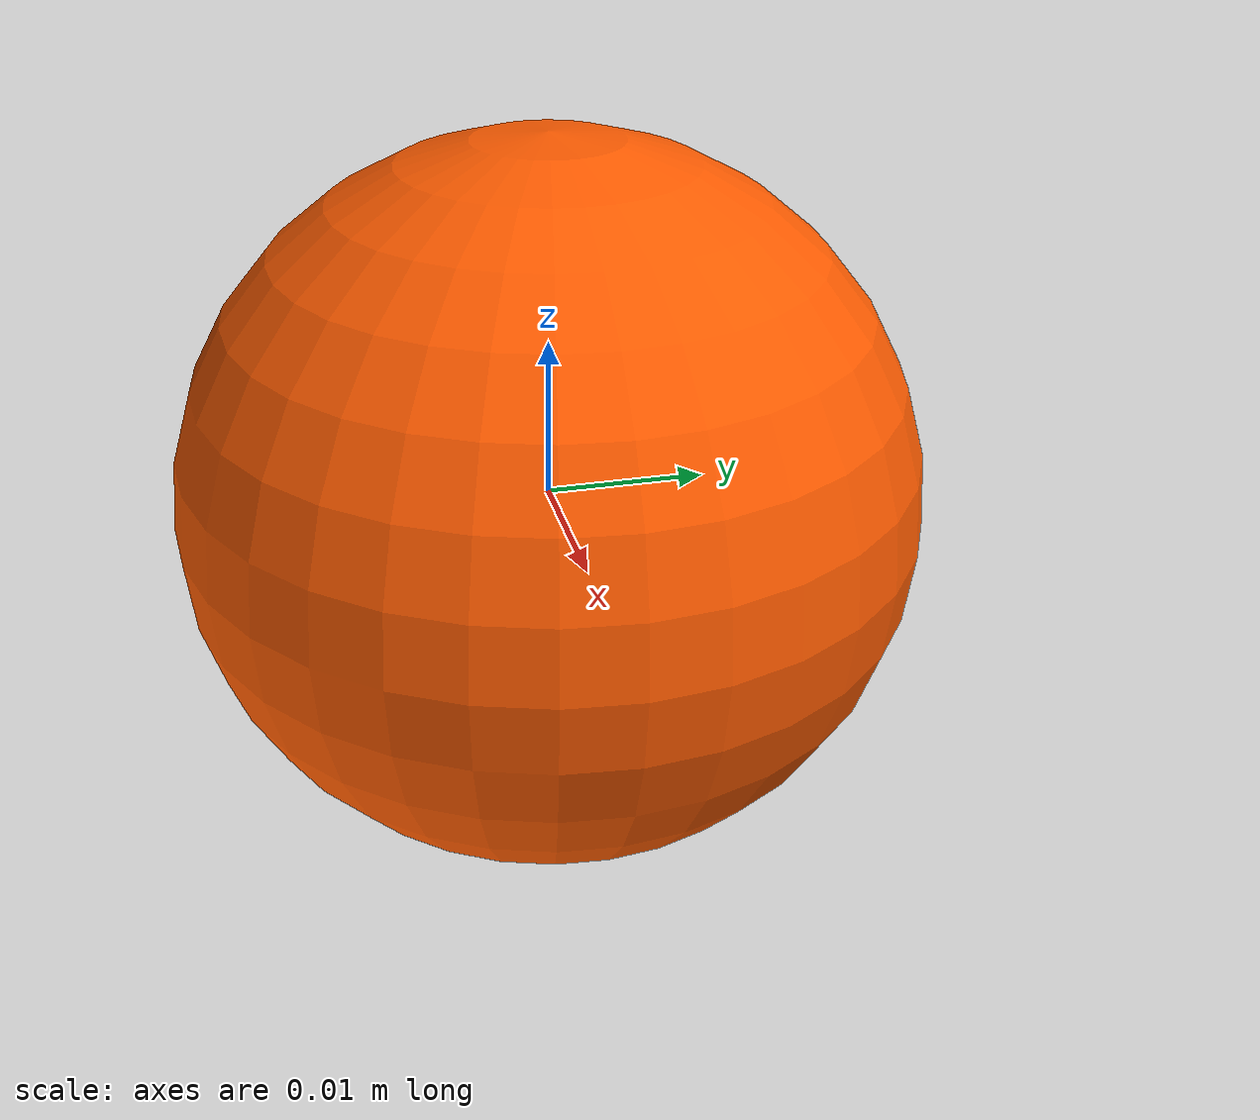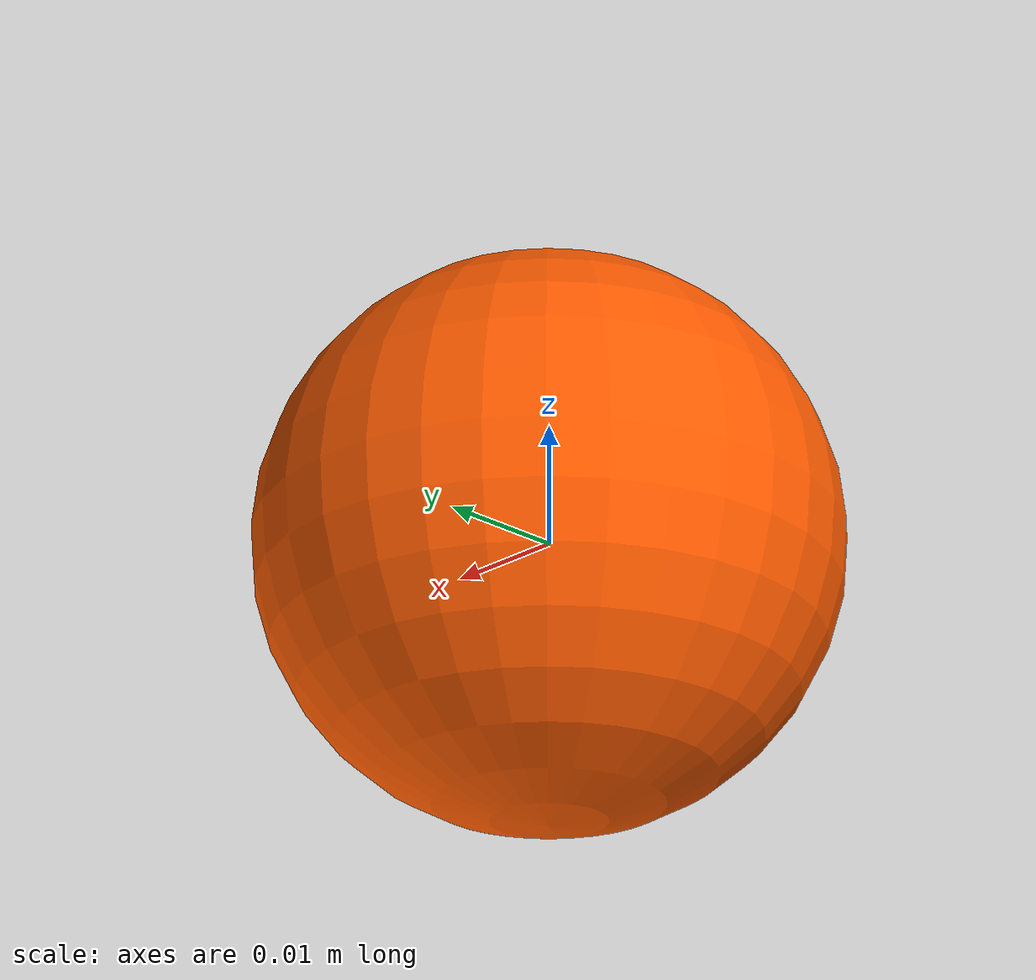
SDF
<?xml version="1.0"?>
<sdf version="1.5">
<model name="pingpong_ball">
  <pose>0 0 0 0 0 0</pose>
    <link name="link">
      <velocity_decay>
        <linear>0</linear>
        <angular>0.001</angular>
      </velocity_decay>
      <inertial>
        <mass>0.0027</mass>
        <inertia>
          <ixx>0.000038</ixx>
          <ixy>0.000038</ixy>
          <ixz>0.000038</ixz>
          <iyy>0.000038</iyy>
          <iyz>0.000038</iyz>
          <izz>0.000038</izz>
        </inertia>
      </inertial>
      <collision name="collision">
        <geometry>
          <mesh>
            <uri>model://pingpong_description/models/pingpong_ball/meshes/pingpong_real.dae</uri>
            <scale>2.0 2.0 2.0</scale>
          </mesh>
        </geometry>
        <surface>
          <friction>
            <ode>
              <mu>0.01</mu>
              <mu2>0.01</mu2>
            </ode>
          </friction>
          <bounce>
            <restitution_coefficient>0.7</restitution_coefficient>
            <threshold>0.0</threshold>
          </bounce>
          <contact>
            <ode>
              <kd>1.0</kd>
              <min_depth>0.001</min_depth>
              <max_vel>100</max_vel>
            </ode>
          </contact>
        </surface>
      </collision>
      <visual name="visual">
        <geometry>
          <mesh>
            <uri>model://pingpong_description/models/pingpong_ball/meshes/pingpong_real.dae</uri>
            <scale>2.0 2.0 2.0</scale>
          </mesh>
        </geometry>
      </visual>
    </link>
  </model>
</sdf>
